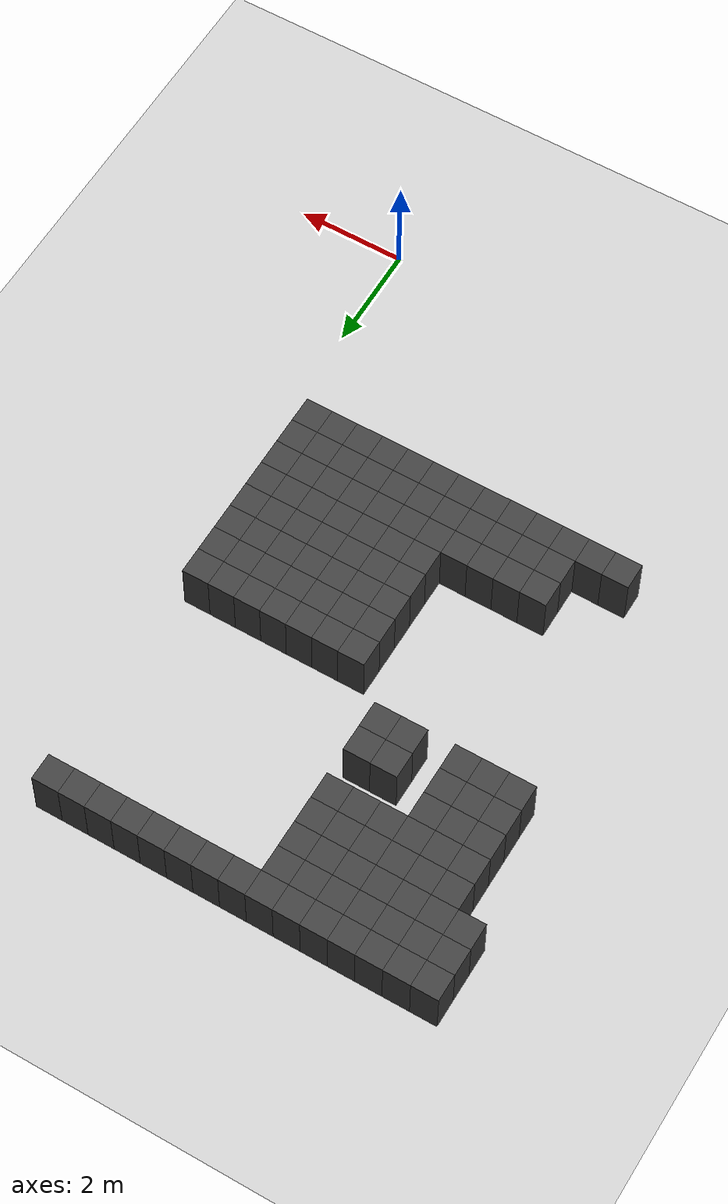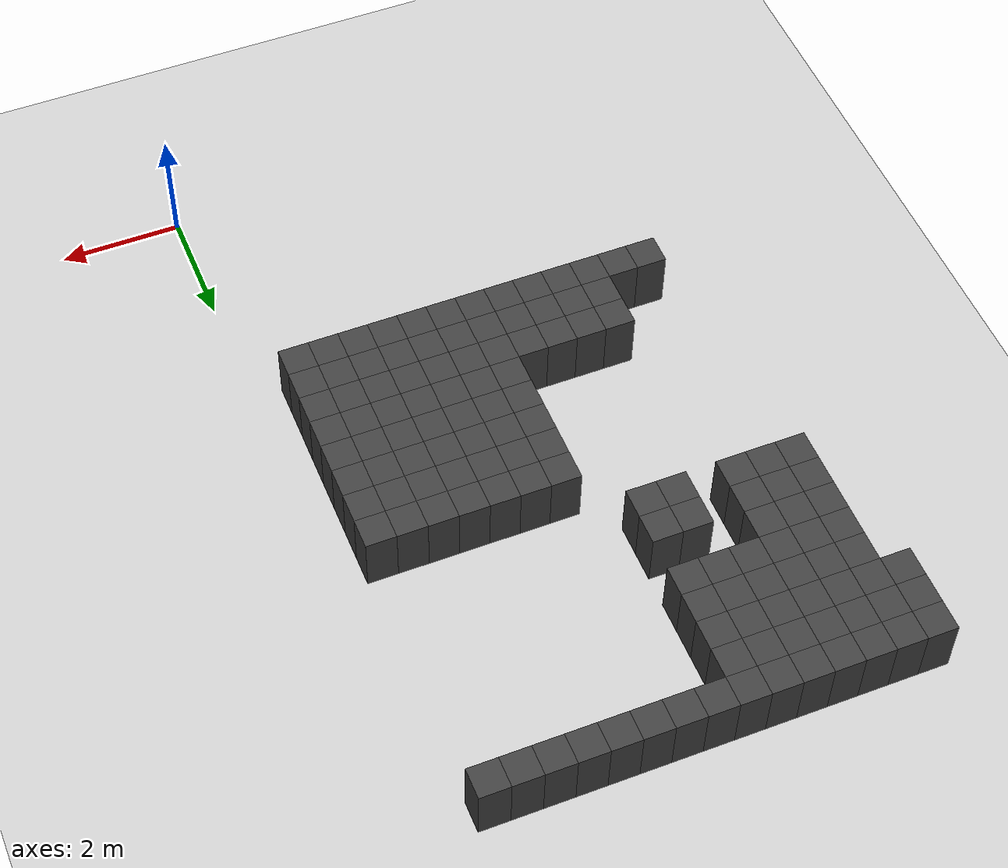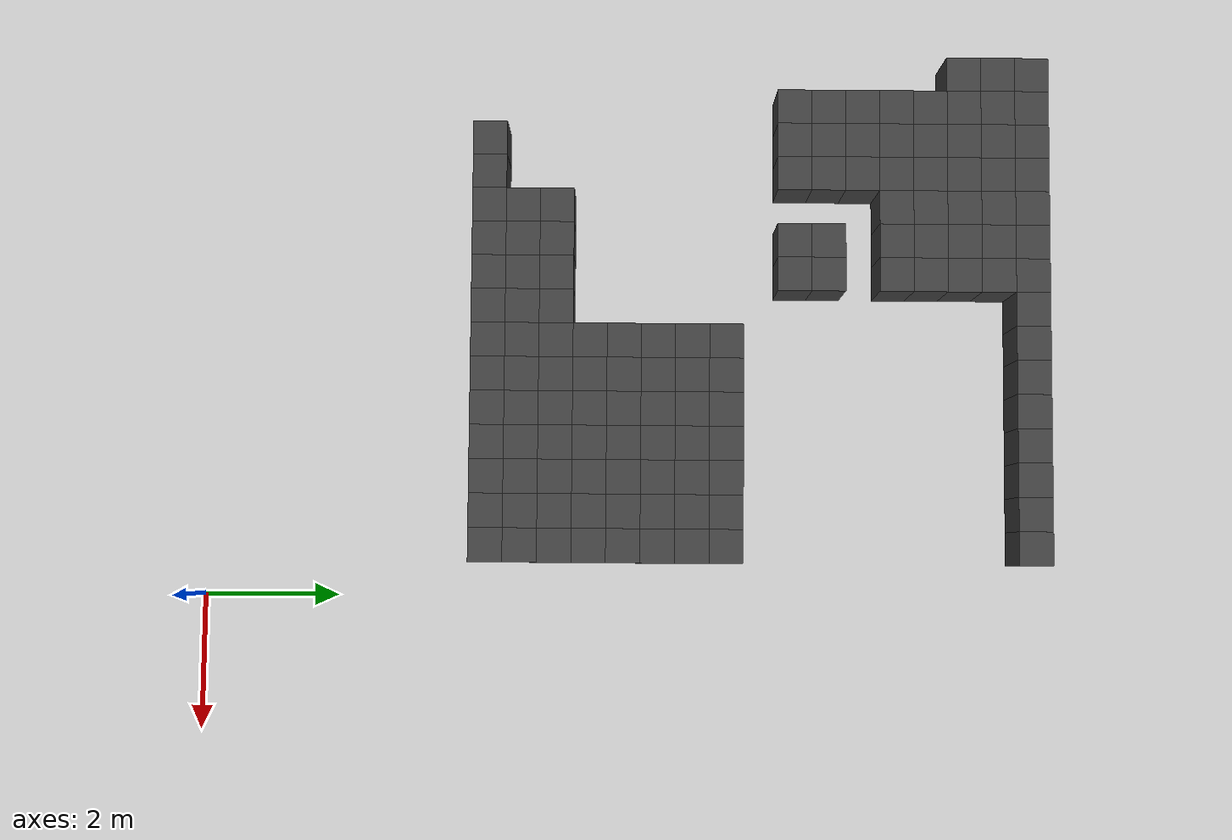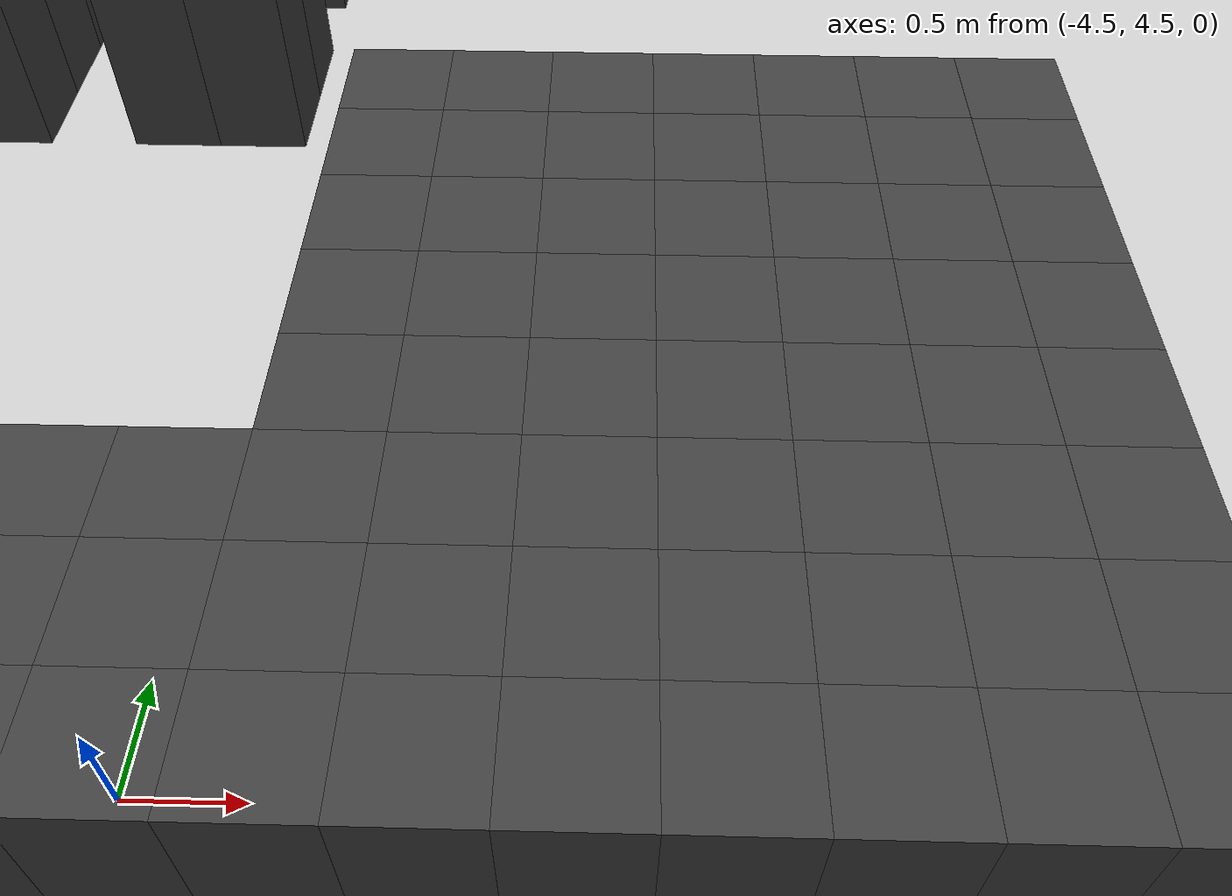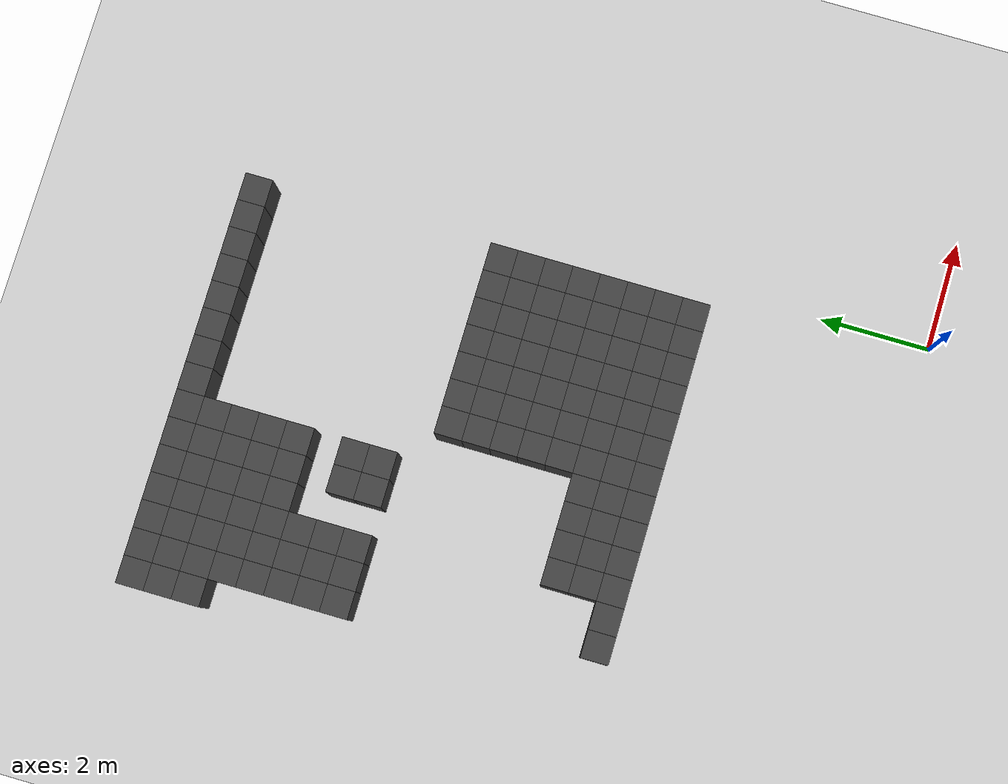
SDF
<sdf version="1.7">
 <world name="map_13994">
  <model name="ground_plane">
   <static>true</static>
   <link name="link">
    <collision name="collision">
     <geometry><plane><normal>0 0 1</normal><size>200 200</size></plane></geometry>
    </collision>
    <visual name="visual">
     <geometry><plane><normal>0 0 1</normal><size>200 200</size></plane></geometry>
     <material><ambient>0.8 0.8 0.8 1</ambient><diffuse>0.8 0.8 0.8 1</diffuse></material>
    </visual>
   </link>
  </model>
  <model name="maze_environment">
   <static>true</static>
   <link name="wall_9">
    <pose>-7.750 12.250 0.500 0 0 0</pose>
    <collision name="col"><geometry><box><size>0.5 0.5 1.0</size></box></geometry></collision>
    <visual name="vis">
     <geometry><box><size>0.5 0.5 1.0</size></box></geometry>
     <material><ambient>0.15 0.15 0.15 1</ambient><diffuse>0.25 0.25 0.25 1</diffuse></material>
    </visual>
   </link>
   <link name="wall_10">
    <pose>-7.250 12.250 0.500 0 0 0</pose>
    <collision name="col"><geometry><box><size>0.5 0.5 1.0</size></box></geometry></collision>
    <visual name="vis">
     <geometry><box><size>0.5 0.5 1.0</size></box></geometry>
     <material><ambient>0.15 0.15 0.15 1</ambient><diffuse>0.25 0.25 0.25 1</diffuse></material>
    </visual>
   </link>
   <link name="wall_11">
    <pose>-6.750 12.250 0.500 0 0 0</pose>
    <collision name="col"><geometry><box><size>0.5 0.5 1.0</size></box></geometry></collision>
    <visual name="vis">
     <geometry><box><size>0.5 0.5 1.0</size></box></geometry>
     <material><ambient>0.15 0.15 0.15 1</ambient><diffuse>0.25 0.25 0.25 1</diffuse></material>
    </visual>
   </link>
   <link name="wall_12">
    <pose>-6.250 12.250 0.500 0 0 0</pose>
    <collision name="col"><geometry><box><size>0.5 0.5 1.0</size></box></geometry></collision>
    <visual name="vis">
     <geometry><box><size>0.5 0.5 1.0</size></box></geometry>
     <material><ambient>0.15 0.15 0.15 1</ambient><diffuse>0.25 0.25 0.25 1</diffuse></material>
    </visual>
   </link>
   <link name="wall_13">
    <pose>-5.750 12.250 0.500 0 0 0</pose>
    <collision name="col"><geometry><box><size>0.5 0.5 1.0</size></box></geometry></collision>
    <visual name="vis">
     <geometry><box><size>0.5 0.5 1.0</size></box></geometry>
     <material><ambient>0.15 0.15 0.15 1</ambient><diffuse>0.25 0.25 0.25 1</diffuse></material>
    </visual>
   </link>
   <link name="wall_14">
    <pose>-5.250 12.250 0.500 0 0 0</pose>
    <collision name="col"><geometry><box><size>0.5 0.5 1.0</size></box></geometry></collision>
    <visual name="vis">
     <geometry><box><size>0.5 0.5 1.0</size></box></geometry>
     <material><ambient>0.15 0.15 0.15 1</ambient><diffuse>0.25 0.25 0.25 1</diffuse></material>
    </visual>
   </link>
   <link name="wall_15">
    <pose>-4.750 12.250 0.500 0 0 0</pose>
    <collision name="col"><geometry><box><size>0.5 0.5 1.0</size></box></geometry></collision>
    <visual name="vis">
     <geometry><box><size>0.5 0.5 1.0</size></box></geometry>
     <material><ambient>0.15 0.15 0.15 1</ambient><diffuse>0.25 0.25 0.25 1</diffuse></material>
    </visual>
   </link>
   <link name="wall_16">
    <pose>-4.250 12.250 0.500 0 0 0</pose>
    <collision name="col"><geometry><box><size>0.5 0.5 1.0</size></box></geometry></collision>
    <visual name="vis">
     <geometry><box><size>0.5 0.5 1.0</size></box></geometry>
     <material><ambient>0.15 0.15 0.15 1</ambient><diffuse>0.25 0.25 0.25 1</diffuse></material>
    </visual>
   </link>
   <link name="wall_17">
    <pose>-3.750 12.250 0.500 0 0 0</pose>
    <collision name="col"><geometry><box><size>0.5 0.5 1.0</size></box></geometry></collision>
    <visual name="vis">
     <geometry><box><size>0.5 0.5 1.0</size></box></geometry>
     <material><ambient>0.15 0.15 0.15 1</ambient><diffuse>0.25 0.25 0.25 1</diffuse></material>
    </visual>
   </link>
   <link name="wall_18">
    <pose>-3.250 12.250 0.500 0 0 0</pose>
    <collision name="col"><geometry><box><size>0.5 0.5 1.0</size></box></geometry></collision>
    <visual name="vis">
     <geometry><box><size>0.5 0.5 1.0</size></box></geometry>
     <material><ambient>0.15 0.15 0.15 1</ambient><diffuse>0.25 0.25 0.25 1</diffuse></material>
    </visual>
   </link>
   <link name="wall_19">
    <pose>-2.750 12.250 0.500 0 0 0</pose>
    <collision name="col"><geometry><box><size>0.5 0.5 1.0</size></box></geometry></collision>
    <visual name="vis">
     <geometry><box><size>0.5 0.5 1.0</size></box></geometry>
     <material><ambient>0.15 0.15 0.15 1</ambient><diffuse>0.25 0.25 0.25 1</diffuse></material>
    </visual>
   </link>
   <link name="wall_20">
    <pose>-2.250 12.250 0.500 0 0 0</pose>
    <collision name="col"><geometry><box><size>0.5 0.5 1.0</size></box></geometry></collision>
    <visual name="vis">
     <geometry><box><size>0.5 0.5 1.0</size></box></geometry>
     <material><ambient>0.15 0.15 0.15 1</ambient><diffuse>0.25 0.25 0.25 1</diffuse></material>
    </visual>
   </link>
   <link name="wall_21">
    <pose>-1.750 12.250 0.500 0 0 0</pose>
    <collision name="col"><geometry><box><size>0.5 0.5 1.0</size></box></geometry></collision>
    <visual name="vis">
     <geometry><box><size>0.5 0.5 1.0</size></box></geometry>
     <material><ambient>0.15 0.15 0.15 1</ambient><diffuse>0.25 0.25 0.25 1</diffuse></material>
    </visual>
   </link>
   <link name="wall_22">
    <pose>-1.250 12.250 0.500 0 0 0</pose>
    <collision name="col"><geometry><box><size>0.5 0.5 1.0</size></box></geometry></collision>
    <visual name="vis">
     <geometry><box><size>0.5 0.5 1.0</size></box></geometry>
     <material><ambient>0.15 0.15 0.15 1</ambient><diffuse>0.25 0.25 0.25 1</diffuse></material>
    </visual>
   </link>
   <link name="wall_23">
    <pose>-0.750 12.250 0.500 0 0 0</pose>
    <collision name="col"><geometry><box><size>0.5 0.5 1.0</size></box></geometry></collision>
    <visual name="vis">
     <geometry><box><size>0.5 0.5 1.0</size></box></geometry>
     <material><ambient>0.15 0.15 0.15 1</ambient><diffuse>0.25 0.25 0.25 1</diffuse></material>
    </visual>
   </link>
   <link name="wall_56">
    <pose>-7.750 11.750 0.500 0 0 0</pose>
    <collision name="col"><geometry><box><size>0.5 0.5 1.0</size></box></geometry></collision>
    <visual name="vis">
     <geometry><box><size>0.5 0.5 1.0</size></box></geometry>
     <material><ambient>0.15 0.15 0.15 1</ambient><diffuse>0.25 0.25 0.25 1</diffuse></material>
    </visual>
   </link>
   <link name="wall_57">
    <pose>-7.250 11.750 0.500 0 0 0</pose>
    <collision name="col"><geometry><box><size>0.5 0.5 1.0</size></box></geometry></collision>
    <visual name="vis">
     <geometry><box><size>0.5 0.5 1.0</size></box></geometry>
     <material><ambient>0.15 0.15 0.15 1</ambient><diffuse>0.25 0.25 0.25 1</diffuse></material>
    </visual>
   </link>
   <link name="wall_58">
    <pose>-6.750 11.750 0.500 0 0 0</pose>
    <collision name="col"><geometry><box><size>0.5 0.5 1.0</size></box></geometry></collision>
    <visual name="vis">
     <geometry><box><size>0.5 0.5 1.0</size></box></geometry>
     <material><ambient>0.15 0.15 0.15 1</ambient><diffuse>0.25 0.25 0.25 1</diffuse></material>
    </visual>
   </link>
   <link name="wall_59">
    <pose>-6.250 11.750 0.500 0 0 0</pose>
    <collision name="col"><geometry><box><size>0.5 0.5 1.0</size></box></geometry></collision>
    <visual name="vis">
     <geometry><box><size>0.5 0.5 1.0</size></box></geometry>
     <material><ambient>0.15 0.15 0.15 1</ambient><diffuse>0.25 0.25 0.25 1</diffuse></material>
    </visual>
   </link>
   <link name="wall_60">
    <pose>-5.750 11.750 0.500 0 0 0</pose>
    <collision name="col"><geometry><box><size>0.5 0.5 1.0</size></box></geometry></collision>
    <visual name="vis">
     <geometry><box><size>0.5 0.5 1.0</size></box></geometry>
     <material><ambient>0.15 0.15 0.15 1</ambient><diffuse>0.25 0.25 0.25 1</diffuse></material>
    </visual>
   </link>
   <link name="wall_61">
    <pose>-5.250 11.750 0.500 0 0 0</pose>
    <collision name="col"><geometry><box><size>0.5 0.5 1.0</size></box></geometry></collision>
    <visual name="vis">
     <geometry><box><size>0.5 0.5 1.0</size></box></geometry>
     <material><ambient>0.15 0.15 0.15 1</ambient><diffuse>0.25 0.25 0.25 1</diffuse></material>
    </visual>
   </link>
   <link name="wall_62">
    <pose>-4.750 11.750 0.500 0 0 0</pose>
    <collision name="col"><geometry><box><size>0.5 0.5 1.0</size></box></geometry></collision>
    <visual name="vis">
     <geometry><box><size>0.5 0.5 1.0</size></box></geometry>
     <material><ambient>0.15 0.15 0.15 1</ambient><diffuse>0.25 0.25 0.25 1</diffuse></material>
    </visual>
   </link>
   <link name="wall_95">
    <pose>-7.750 11.250 0.500 0 0 0</pose>
    <collision name="col"><geometry><box><size>0.5 0.5 1.0</size></box></geometry></collision>
    <visual name="vis">
     <geometry><box><size>0.5 0.5 1.0</size></box></geometry>
     <material><ambient>0.15 0.15 0.15 1</ambient><diffuse>0.25 0.25 0.25 1</diffuse></material>
    </visual>
   </link>
   <link name="wall_96">
    <pose>-7.250 11.250 0.500 0 0 0</pose>
    <collision name="col"><geometry><box><size>0.5 0.5 1.0</size></box></geometry></collision>
    <visual name="vis">
     <geometry><box><size>0.5 0.5 1.0</size></box></geometry>
     <material><ambient>0.15 0.15 0.15 1</ambient><diffuse>0.25 0.25 0.25 1</diffuse></material>
    </visual>
   </link>
   <link name="wall_97">
    <pose>-6.750 11.250 0.500 0 0 0</pose>
    <collision name="col"><geometry><box><size>0.5 0.5 1.0</size></box></geometry></collision>
    <visual name="vis">
     <geometry><box><size>0.5 0.5 1.0</size></box></geometry>
     <material><ambient>0.15 0.15 0.15 1</ambient><diffuse>0.25 0.25 0.25 1</diffuse></material>
    </visual>
   </link>
   <link name="wall_98">
    <pose>-6.250 11.250 0.500 0 0 0</pose>
    <collision name="col"><geometry><box><size>0.5 0.5 1.0</size></box></geometry></collision>
    <visual name="vis">
     <geometry><box><size>0.5 0.5 1.0</size></box></geometry>
     <material><ambient>0.15 0.15 0.15 1</ambient><diffuse>0.25 0.25 0.25 1</diffuse></material>
    </visual>
   </link>
   <link name="wall_99">
    <pose>-5.750 11.250 0.500 0 0 0</pose>
    <collision name="col"><geometry><box><size>0.5 0.5 1.0</size></box></geometry></collision>
    <visual name="vis">
     <geometry><box><size>0.5 0.5 1.0</size></box></geometry>
     <material><ambient>0.15 0.15 0.15 1</ambient><diffuse>0.25 0.25 0.25 1</diffuse></material>
    </visual>
   </link>
   <link name="wall_100">
    <pose>-5.250 11.250 0.500 0 0 0</pose>
    <collision name="col"><geometry><box><size>0.5 0.5 1.0</size></box></geometry></collision>
    <visual name="vis">
     <geometry><box><size>0.5 0.5 1.0</size></box></geometry>
     <material><ambient>0.15 0.15 0.15 1</ambient><diffuse>0.25 0.25 0.25 1</diffuse></material>
    </visual>
   </link>
   <link name="wall_101">
    <pose>-4.750 11.250 0.500 0 0 0</pose>
    <collision name="col"><geometry><box><size>0.5 0.5 1.0</size></box></geometry></collision>
    <visual name="vis">
     <geometry><box><size>0.5 0.5 1.0</size></box></geometry>
     <material><ambient>0.15 0.15 0.15 1</ambient><diffuse>0.25 0.25 0.25 1</diffuse></material>
    </visual>
   </link>
   <link name="wall_121">
    <pose>-7.250 10.750 0.500 0 0 0</pose>
    <collision name="col"><geometry><box><size>0.5 0.5 1.0</size></box></geometry></collision>
    <visual name="vis">
     <geometry><box><size>0.5 0.5 1.0</size></box></geometry>
     <material><ambient>0.15 0.15 0.15 1</ambient><diffuse>0.25 0.25 0.25 1</diffuse></material>
    </visual>
   </link>
   <link name="wall_122">
    <pose>-6.750 10.750 0.500 0 0 0</pose>
    <collision name="col"><geometry><box><size>0.5 0.5 1.0</size></box></geometry></collision>
    <visual name="vis">
     <geometry><box><size>0.5 0.5 1.0</size></box></geometry>
     <material><ambient>0.15 0.15 0.15 1</ambient><diffuse>0.25 0.25 0.25 1</diffuse></material>
    </visual>
   </link>
   <link name="wall_123">
    <pose>-6.250 10.750 0.500 0 0 0</pose>
    <collision name="col"><geometry><box><size>0.5 0.5 1.0</size></box></geometry></collision>
    <visual name="vis">
     <geometry><box><size>0.5 0.5 1.0</size></box></geometry>
     <material><ambient>0.15 0.15 0.15 1</ambient><diffuse>0.25 0.25 0.25 1</diffuse></material>
    </visual>
   </link>
   <link name="wall_124">
    <pose>-5.750 10.750 0.500 0 0 0</pose>
    <collision name="col"><geometry><box><size>0.5 0.5 1.0</size></box></geometry></collision>
    <visual name="vis">
     <geometry><box><size>0.5 0.5 1.0</size></box></geometry>
     <material><ambient>0.15 0.15 0.15 1</ambient><diffuse>0.25 0.25 0.25 1</diffuse></material>
    </visual>
   </link>
   <link name="wall_125">
    <pose>-5.250 10.750 0.500 0 0 0</pose>
    <collision name="col"><geometry><box><size>0.5 0.5 1.0</size></box></geometry></collision>
    <visual name="vis">
     <geometry><box><size>0.5 0.5 1.0</size></box></geometry>
     <material><ambient>0.15 0.15 0.15 1</ambient><diffuse>0.25 0.25 0.25 1</diffuse></material>
    </visual>
   </link>
   <link name="wall_126">
    <pose>-4.750 10.750 0.500 0 0 0</pose>
    <collision name="col"><geometry><box><size>0.5 0.5 1.0</size></box></geometry></collision>
    <visual name="vis">
     <geometry><box><size>0.5 0.5 1.0</size></box></geometry>
     <material><ambient>0.15 0.15 0.15 1</ambient><diffuse>0.25 0.25 0.25 1</diffuse></material>
    </visual>
   </link>
   <link name="wall_148">
    <pose>-7.250 10.250 0.500 0 0 0</pose>
    <collision name="col"><geometry><box><size>0.5 0.5 1.0</size></box></geometry></collision>
    <visual name="vis">
     <geometry><box><size>0.5 0.5 1.0</size></box></geometry>
     <material><ambient>0.15 0.15 0.15 1</ambient><diffuse>0.25 0.25 0.25 1</diffuse></material>
    </visual>
   </link>
   <link name="wall_149">
    <pose>-6.750 10.250 0.500 0 0 0</pose>
    <collision name="col"><geometry><box><size>0.5 0.5 1.0</size></box></geometry></collision>
    <visual name="vis">
     <geometry><box><size>0.5 0.5 1.0</size></box></geometry>
     <material><ambient>0.15 0.15 0.15 1</ambient><diffuse>0.25 0.25 0.25 1</diffuse></material>
    </visual>
   </link>
   <link name="wall_150">
    <pose>-6.250 10.250 0.500 0 0 0</pose>
    <collision name="col"><geometry><box><size>0.5 0.5 1.0</size></box></geometry></collision>
    <visual name="vis">
     <geometry><box><size>0.5 0.5 1.0</size></box></geometry>
     <material><ambient>0.15 0.15 0.15 1</ambient><diffuse>0.25 0.25 0.25 1</diffuse></material>
    </visual>
   </link>
   <link name="wall_151">
    <pose>-5.750 10.250 0.500 0 0 0</pose>
    <collision name="col"><geometry><box><size>0.5 0.5 1.0</size></box></geometry></collision>
    <visual name="vis">
     <geometry><box><size>0.5 0.5 1.0</size></box></geometry>
     <material><ambient>0.15 0.15 0.15 1</ambient><diffuse>0.25 0.25 0.25 1</diffuse></material>
    </visual>
   </link>
   <link name="wall_152">
    <pose>-5.250 10.250 0.500 0 0 0</pose>
    <collision name="col"><geometry><box><size>0.5 0.5 1.0</size></box></geometry></collision>
    <visual name="vis">
     <geometry><box><size>0.5 0.5 1.0</size></box></geometry>
     <material><ambient>0.15 0.15 0.15 1</ambient><diffuse>0.25 0.25 0.25 1</diffuse></material>
    </visual>
   </link>
   <link name="wall_153">
    <pose>-4.750 10.250 0.500 0 0 0</pose>
    <collision name="col"><geometry><box><size>0.5 0.5 1.0</size></box></geometry></collision>
    <visual name="vis">
     <geometry><box><size>0.5 0.5 1.0</size></box></geometry>
     <material><ambient>0.15 0.15 0.15 1</ambient><diffuse>0.25 0.25 0.25 1</diffuse></material>
    </visual>
   </link>
   <link name="wall_171">
    <pose>-7.250 9.750 0.500 0 0 0</pose>
    <collision name="col"><geometry><box><size>0.5 0.5 1.0</size></box></geometry></collision>
    <visual name="vis">
     <geometry><box><size>0.5 0.5 1.0</size></box></geometry>
     <material><ambient>0.15 0.15 0.15 1</ambient><diffuse>0.25 0.25 0.25 1</diffuse></material>
    </visual>
   </link>
   <link name="wall_172">
    <pose>-6.750 9.750 0.500 0 0 0</pose>
    <collision name="col"><geometry><box><size>0.5 0.5 1.0</size></box></geometry></collision>
    <visual name="vis">
     <geometry><box><size>0.5 0.5 1.0</size></box></geometry>
     <material><ambient>0.15 0.15 0.15 1</ambient><diffuse>0.25 0.25 0.25 1</diffuse></material>
    </visual>
   </link>
   <link name="wall_173">
    <pose>-6.250 9.750 0.500 0 0 0</pose>
    <collision name="col"><geometry><box><size>0.5 0.5 1.0</size></box></geometry></collision>
    <visual name="vis">
     <geometry><box><size>0.5 0.5 1.0</size></box></geometry>
     <material><ambient>0.15 0.15 0.15 1</ambient><diffuse>0.25 0.25 0.25 1</diffuse></material>
    </visual>
   </link>
   <link name="wall_189">
    <pose>-7.250 9.250 0.500 0 0 0</pose>
    <collision name="col"><geometry><box><size>0.5 0.5 1.0</size></box></geometry></collision>
    <visual name="vis">
     <geometry><box><size>0.5 0.5 1.0</size></box></geometry>
     <material><ambient>0.15 0.15 0.15 1</ambient><diffuse>0.25 0.25 0.25 1</diffuse></material>
    </visual>
   </link>
   <link name="wall_190">
    <pose>-6.750 9.250 0.500 0 0 0</pose>
    <collision name="col"><geometry><box><size>0.5 0.5 1.0</size></box></geometry></collision>
    <visual name="vis">
     <geometry><box><size>0.5 0.5 1.0</size></box></geometry>
     <material><ambient>0.15 0.15 0.15 1</ambient><diffuse>0.25 0.25 0.25 1</diffuse></material>
    </visual>
   </link>
   <link name="wall_191">
    <pose>-6.250 9.250 0.500 0 0 0</pose>
    <collision name="col"><geometry><box><size>0.5 0.5 1.0</size></box></geometry></collision>
    <visual name="vis">
     <geometry><box><size>0.5 0.5 1.0</size></box></geometry>
     <material><ambient>0.15 0.15 0.15 1</ambient><diffuse>0.25 0.25 0.25 1</diffuse></material>
    </visual>
   </link>
   <link name="wall_192">
    <pose>-5.250 9.250 0.500 0 0 0</pose>
    <collision name="col"><geometry><box><size>0.5 0.5 1.0</size></box></geometry></collision>
    <visual name="vis">
     <geometry><box><size>0.5 0.5 1.0</size></box></geometry>
     <material><ambient>0.15 0.15 0.15 1</ambient><diffuse>0.25 0.25 0.25 1</diffuse></material>
    </visual>
   </link>
   <link name="wall_193">
    <pose>-4.750 9.250 0.500 0 0 0</pose>
    <collision name="col"><geometry><box><size>0.5 0.5 1.0</size></box></geometry></collision>
    <visual name="vis">
     <geometry><box><size>0.5 0.5 1.0</size></box></geometry>
     <material><ambient>0.15 0.15 0.15 1</ambient><diffuse>0.25 0.25 0.25 1</diffuse></material>
    </visual>
   </link>
   <link name="wall_211">
    <pose>-7.250 8.750 0.500 0 0 0</pose>
    <collision name="col"><geometry><box><size>0.5 0.5 1.0</size></box></geometry></collision>
    <visual name="vis">
     <geometry><box><size>0.5 0.5 1.0</size></box></geometry>
     <material><ambient>0.15 0.15 0.15 1</ambient><diffuse>0.25 0.25 0.25 1</diffuse></material>
    </visual>
   </link>
   <link name="wall_212">
    <pose>-6.750 8.750 0.500 0 0 0</pose>
    <collision name="col"><geometry><box><size>0.5 0.5 1.0</size></box></geometry></collision>
    <visual name="vis">
     <geometry><box><size>0.5 0.5 1.0</size></box></geometry>
     <material><ambient>0.15 0.15 0.15 1</ambient><diffuse>0.25 0.25 0.25 1</diffuse></material>
    </visual>
   </link>
   <link name="wall_213">
    <pose>-6.250 8.750 0.500 0 0 0</pose>
    <collision name="col"><geometry><box><size>0.5 0.5 1.0</size></box></geometry></collision>
    <visual name="vis">
     <geometry><box><size>0.5 0.5 1.0</size></box></geometry>
     <material><ambient>0.15 0.15 0.15 1</ambient><diffuse>0.25 0.25 0.25 1</diffuse></material>
    </visual>
   </link>
   <link name="wall_214">
    <pose>-5.250 8.750 0.500 0 0 0</pose>
    <collision name="col"><geometry><box><size>0.5 0.5 1.0</size></box></geometry></collision>
    <visual name="vis">
     <geometry><box><size>0.5 0.5 1.0</size></box></geometry>
     <material><ambient>0.15 0.15 0.15 1</ambient><diffuse>0.25 0.25 0.25 1</diffuse></material>
    </visual>
   </link>
   <link name="wall_215">
    <pose>-4.750 8.750 0.500 0 0 0</pose>
    <collision name="col"><geometry><box><size>0.5 0.5 1.0</size></box></geometry></collision>
    <visual name="vis">
     <geometry><box><size>0.5 0.5 1.0</size></box></geometry>
     <material><ambient>0.15 0.15 0.15 1</ambient><diffuse>0.25 0.25 0.25 1</diffuse></material>
    </visual>
   </link>
   <link name="wall_250">
    <pose>-3.750 7.750 0.500 0 0 0</pose>
    <collision name="col"><geometry><box><size>0.5 0.5 1.0</size></box></geometry></collision>
    <visual name="vis">
     <geometry><box><size>0.5 0.5 1.0</size></box></geometry>
     <material><ambient>0.15 0.15 0.15 1</ambient><diffuse>0.25 0.25 0.25 1</diffuse></material>
    </visual>
   </link>
   <link name="wall_251">
    <pose>-3.250 7.750 0.500 0 0 0</pose>
    <collision name="col"><geometry><box><size>0.5 0.5 1.0</size></box></geometry></collision>
    <visual name="vis">
     <geometry><box><size>0.5 0.5 1.0</size></box></geometry>
     <material><ambient>0.15 0.15 0.15 1</ambient><diffuse>0.25 0.25 0.25 1</diffuse></material>
    </visual>
   </link>
   <link name="wall_252">
    <pose>-2.750 7.750 0.500 0 0 0</pose>
    <collision name="col"><geometry><box><size>0.5 0.5 1.0</size></box></geometry></collision>
    <visual name="vis">
     <geometry><box><size>0.5 0.5 1.0</size></box></geometry>
     <material><ambient>0.15 0.15 0.15 1</ambient><diffuse>0.25 0.25 0.25 1</diffuse></material>
    </visual>
   </link>
   <link name="wall_253">
    <pose>-2.250 7.750 0.500 0 0 0</pose>
    <collision name="col"><geometry><box><size>0.5 0.5 1.0</size></box></geometry></collision>
    <visual name="vis">
     <geometry><box><size>0.5 0.5 1.0</size></box></geometry>
     <material><ambient>0.15 0.15 0.15 1</ambient><diffuse>0.25 0.25 0.25 1</diffuse></material>
    </visual>
   </link>
   <link name="wall_254">
    <pose>-1.750 7.750 0.500 0 0 0</pose>
    <collision name="col"><geometry><box><size>0.5 0.5 1.0</size></box></geometry></collision>
    <visual name="vis">
     <geometry><box><size>0.5 0.5 1.0</size></box></geometry>
     <material><ambient>0.15 0.15 0.15 1</ambient><diffuse>0.25 0.25 0.25 1</diffuse></material>
    </visual>
   </link>
   <link name="wall_255">
    <pose>-1.250 7.750 0.500 0 0 0</pose>
    <collision name="col"><geometry><box><size>0.5 0.5 1.0</size></box></geometry></collision>
    <visual name="vis">
     <geometry><box><size>0.5 0.5 1.0</size></box></geometry>
     <material><ambient>0.15 0.15 0.15 1</ambient><diffuse>0.25 0.25 0.25 1</diffuse></material>
    </visual>
   </link>
   <link name="wall_256">
    <pose>-0.750 7.750 0.500 0 0 0</pose>
    <collision name="col"><geometry><box><size>0.5 0.5 1.0</size></box></geometry></collision>
    <visual name="vis">
     <geometry><box><size>0.5 0.5 1.0</size></box></geometry>
     <material><ambient>0.15 0.15 0.15 1</ambient><diffuse>0.25 0.25 0.25 1</diffuse></material>
    </visual>
   </link>
   <link name="wall_280">
    <pose>-3.750 7.250 0.500 0 0 0</pose>
    <collision name="col"><geometry><box><size>0.5 0.5 1.0</size></box></geometry></collision>
    <visual name="vis">
     <geometry><box><size>0.5 0.5 1.0</size></box></geometry>
     <material><ambient>0.15 0.15 0.15 1</ambient><diffuse>0.25 0.25 0.25 1</diffuse></material>
    </visual>
   </link>
   <link name="wall_281">
    <pose>-3.250 7.250 0.500 0 0 0</pose>
    <collision name="col"><geometry><box><size>0.5 0.5 1.0</size></box></geometry></collision>
    <visual name="vis">
     <geometry><box><size>0.5 0.5 1.0</size></box></geometry>
     <material><ambient>0.15 0.15 0.15 1</ambient><diffuse>0.25 0.25 0.25 1</diffuse></material>
    </visual>
   </link>
   <link name="wall_282">
    <pose>-2.750 7.250 0.500 0 0 0</pose>
    <collision name="col"><geometry><box><size>0.5 0.5 1.0</size></box></geometry></collision>
    <visual name="vis">
     <geometry><box><size>0.5 0.5 1.0</size></box></geometry>
     <material><ambient>0.15 0.15 0.15 1</ambient><diffuse>0.25 0.25 0.25 1</diffuse></material>
    </visual>
   </link>
   <link name="wall_283">
    <pose>-2.250 7.250 0.500 0 0 0</pose>
    <collision name="col"><geometry><box><size>0.5 0.5 1.0</size></box></geometry></collision>
    <visual name="vis">
     <geometry><box><size>0.5 0.5 1.0</size></box></geometry>
     <material><ambient>0.15 0.15 0.15 1</ambient><diffuse>0.25 0.25 0.25 1</diffuse></material>
    </visual>
   </link>
   <link name="wall_284">
    <pose>-1.750 7.250 0.500 0 0 0</pose>
    <collision name="col"><geometry><box><size>0.5 0.5 1.0</size></box></geometry></collision>
    <visual name="vis">
     <geometry><box><size>0.5 0.5 1.0</size></box></geometry>
     <material><ambient>0.15 0.15 0.15 1</ambient><diffuse>0.25 0.25 0.25 1</diffuse></material>
    </visual>
   </link>
   <link name="wall_285">
    <pose>-1.250 7.250 0.500 0 0 0</pose>
    <collision name="col"><geometry><box><size>0.5 0.5 1.0</size></box></geometry></collision>
    <visual name="vis">
     <geometry><box><size>0.5 0.5 1.0</size></box></geometry>
     <material><ambient>0.15 0.15 0.15 1</ambient><diffuse>0.25 0.25 0.25 1</diffuse></material>
    </visual>
   </link>
   <link name="wall_286">
    <pose>-0.750 7.250 0.500 0 0 0</pose>
    <collision name="col"><geometry><box><size>0.5 0.5 1.0</size></box></geometry></collision>
    <visual name="vis">
     <geometry><box><size>0.5 0.5 1.0</size></box></geometry>
     <material><ambient>0.15 0.15 0.15 1</ambient><diffuse>0.25 0.25 0.25 1</diffuse></material>
    </visual>
   </link>
   <link name="wall_310">
    <pose>-3.750 6.750 0.500 0 0 0</pose>
    <collision name="col"><geometry><box><size>0.5 0.5 1.0</size></box></geometry></collision>
    <visual name="vis">
     <geometry><box><size>0.5 0.5 1.0</size></box></geometry>
     <material><ambient>0.15 0.15 0.15 1</ambient><diffuse>0.25 0.25 0.25 1</diffuse></material>
    </visual>
   </link>
   <link name="wall_311">
    <pose>-3.250 6.750 0.500 0 0 0</pose>
    <collision name="col"><geometry><box><size>0.5 0.5 1.0</size></box></geometry></collision>
    <visual name="vis">
     <geometry><box><size>0.5 0.5 1.0</size></box></geometry>
     <material><ambient>0.15 0.15 0.15 1</ambient><diffuse>0.25 0.25 0.25 1</diffuse></material>
    </visual>
   </link>
   <link name="wall_312">
    <pose>-2.750 6.750 0.500 0 0 0</pose>
    <collision name="col"><geometry><box><size>0.5 0.5 1.0</size></box></geometry></collision>
    <visual name="vis">
     <geometry><box><size>0.5 0.5 1.0</size></box></geometry>
     <material><ambient>0.15 0.15 0.15 1</ambient><diffuse>0.25 0.25 0.25 1</diffuse></material>
    </visual>
   </link>
   <link name="wall_313">
    <pose>-2.250 6.750 0.500 0 0 0</pose>
    <collision name="col"><geometry><box><size>0.5 0.5 1.0</size></box></geometry></collision>
    <visual name="vis">
     <geometry><box><size>0.5 0.5 1.0</size></box></geometry>
     <material><ambient>0.15 0.15 0.15 1</ambient><diffuse>0.25 0.25 0.25 1</diffuse></material>
    </visual>
   </link>
   <link name="wall_314">
    <pose>-1.750 6.750 0.500 0 0 0</pose>
    <collision name="col"><geometry><box><size>0.5 0.5 1.0</size></box></geometry></collision>
    <visual name="vis">
     <geometry><box><size>0.5 0.5 1.0</size></box></geometry>
     <material><ambient>0.15 0.15 0.15 1</ambient><diffuse>0.25 0.25 0.25 1</diffuse></material>
    </visual>
   </link>
   <link name="wall_315">
    <pose>-1.250 6.750 0.500 0 0 0</pose>
    <collision name="col"><geometry><box><size>0.5 0.5 1.0</size></box></geometry></collision>
    <visual name="vis">
     <geometry><box><size>0.5 0.5 1.0</size></box></geometry>
     <material><ambient>0.15 0.15 0.15 1</ambient><diffuse>0.25 0.25 0.25 1</diffuse></material>
    </visual>
   </link>
   <link name="wall_316">
    <pose>-0.750 6.750 0.500 0 0 0</pose>
    <collision name="col"><geometry><box><size>0.5 0.5 1.0</size></box></geometry></collision>
    <visual name="vis">
     <geometry><box><size>0.5 0.5 1.0</size></box></geometry>
     <material><ambient>0.15 0.15 0.15 1</ambient><diffuse>0.25 0.25 0.25 1</diffuse></material>
    </visual>
   </link>
   <link name="wall_343">
    <pose>-3.750 6.250 0.500 0 0 0</pose>
    <collision name="col"><geometry><box><size>0.5 0.5 1.0</size></box></geometry></collision>
    <visual name="vis">
     <geometry><box><size>0.5 0.5 1.0</size></box></geometry>
     <material><ambient>0.15 0.15 0.15 1</ambient><diffuse>0.25 0.25 0.25 1</diffuse></material>
    </visual>
   </link>
   <link name="wall_344">
    <pose>-3.250 6.250 0.500 0 0 0</pose>
    <collision name="col"><geometry><box><size>0.5 0.5 1.0</size></box></geometry></collision>
    <visual name="vis">
     <geometry><box><size>0.5 0.5 1.0</size></box></geometry>
     <material><ambient>0.15 0.15 0.15 1</ambient><diffuse>0.25 0.25 0.25 1</diffuse></material>
    </visual>
   </link>
   <link name="wall_345">
    <pose>-2.750 6.250 0.500 0 0 0</pose>
    <collision name="col"><geometry><box><size>0.5 0.5 1.0</size></box></geometry></collision>
    <visual name="vis">
     <geometry><box><size>0.5 0.5 1.0</size></box></geometry>
     <material><ambient>0.15 0.15 0.15 1</ambient><diffuse>0.25 0.25 0.25 1</diffuse></material>
    </visual>
   </link>
   <link name="wall_346">
    <pose>-2.250 6.250 0.500 0 0 0</pose>
    <collision name="col"><geometry><box><size>0.5 0.5 1.0</size></box></geometry></collision>
    <visual name="vis">
     <geometry><box><size>0.5 0.5 1.0</size></box></geometry>
     <material><ambient>0.15 0.15 0.15 1</ambient><diffuse>0.25 0.25 0.25 1</diffuse></material>
    </visual>
   </link>
   <link name="wall_347">
    <pose>-1.750 6.250 0.500 0 0 0</pose>
    <collision name="col"><geometry><box><size>0.5 0.5 1.0</size></box></geometry></collision>
    <visual name="vis">
     <geometry><box><size>0.5 0.5 1.0</size></box></geometry>
     <material><ambient>0.15 0.15 0.15 1</ambient><diffuse>0.25 0.25 0.25 1</diffuse></material>
    </visual>
   </link>
   <link name="wall_348">
    <pose>-1.250 6.250 0.500 0 0 0</pose>
    <collision name="col"><geometry><box><size>0.5 0.5 1.0</size></box></geometry></collision>
    <visual name="vis">
     <geometry><box><size>0.5 0.5 1.0</size></box></geometry>
     <material><ambient>0.15 0.15 0.15 1</ambient><diffuse>0.25 0.25 0.25 1</diffuse></material>
    </visual>
   </link>
   <link name="wall_349">
    <pose>-0.750 6.250 0.500 0 0 0</pose>
    <collision name="col"><geometry><box><size>0.5 0.5 1.0</size></box></geometry></collision>
    <visual name="vis">
     <geometry><box><size>0.5 0.5 1.0</size></box></geometry>
     <material><ambient>0.15 0.15 0.15 1</ambient><diffuse>0.25 0.25 0.25 1</diffuse></material>
    </visual>
   </link>
   <link name="wall_381">
    <pose>-3.750 5.750 0.500 0 0 0</pose>
    <collision name="col"><geometry><box><size>0.5 0.5 1.0</size></box></geometry></collision>
    <visual name="vis">
     <geometry><box><size>0.5 0.5 1.0</size></box></geometry>
     <material><ambient>0.15 0.15 0.15 1</ambient><diffuse>0.25 0.25 0.25 1</diffuse></material>
    </visual>
   </link>
   <link name="wall_382">
    <pose>-3.250 5.750 0.500 0 0 0</pose>
    <collision name="col"><geometry><box><size>0.5 0.5 1.0</size></box></geometry></collision>
    <visual name="vis">
     <geometry><box><size>0.5 0.5 1.0</size></box></geometry>
     <material><ambient>0.15 0.15 0.15 1</ambient><diffuse>0.25 0.25 0.25 1</diffuse></material>
    </visual>
   </link>
   <link name="wall_383">
    <pose>-2.750 5.750 0.500 0 0 0</pose>
    <collision name="col"><geometry><box><size>0.5 0.5 1.0</size></box></geometry></collision>
    <visual name="vis">
     <geometry><box><size>0.5 0.5 1.0</size></box></geometry>
     <material><ambient>0.15 0.15 0.15 1</ambient><diffuse>0.25 0.25 0.25 1</diffuse></material>
    </visual>
   </link>
   <link name="wall_384">
    <pose>-2.250 5.750 0.500 0 0 0</pose>
    <collision name="col"><geometry><box><size>0.5 0.5 1.0</size></box></geometry></collision>
    <visual name="vis">
     <geometry><box><size>0.5 0.5 1.0</size></box></geometry>
     <material><ambient>0.15 0.15 0.15 1</ambient><diffuse>0.25 0.25 0.25 1</diffuse></material>
    </visual>
   </link>
   <link name="wall_385">
    <pose>-1.750 5.750 0.500 0 0 0</pose>
    <collision name="col"><geometry><box><size>0.5 0.5 1.0</size></box></geometry></collision>
    <visual name="vis">
     <geometry><box><size>0.5 0.5 1.0</size></box></geometry>
     <material><ambient>0.15 0.15 0.15 1</ambient><diffuse>0.25 0.25 0.25 1</diffuse></material>
    </visual>
   </link>
   <link name="wall_386">
    <pose>-1.250 5.750 0.500 0 0 0</pose>
    <collision name="col"><geometry><box><size>0.5 0.5 1.0</size></box></geometry></collision>
    <visual name="vis">
     <geometry><box><size>0.5 0.5 1.0</size></box></geometry>
     <material><ambient>0.15 0.15 0.15 1</ambient><diffuse>0.25 0.25 0.25 1</diffuse></material>
    </visual>
   </link>
   <link name="wall_387">
    <pose>-0.750 5.750 0.500 0 0 0</pose>
    <collision name="col"><geometry><box><size>0.5 0.5 1.0</size></box></geometry></collision>
    <visual name="vis">
     <geometry><box><size>0.5 0.5 1.0</size></box></geometry>
     <material><ambient>0.15 0.15 0.15 1</ambient><diffuse>0.25 0.25 0.25 1</diffuse></material>
    </visual>
   </link>
   <link name="wall_415">
    <pose>-5.750 5.250 0.500 0 0 0</pose>
    <collision name="col"><geometry><box><size>0.5 0.5 1.0</size></box></geometry></collision>
    <visual name="vis">
     <geometry><box><size>0.5 0.5 1.0</size></box></geometry>
     <material><ambient>0.15 0.15 0.15 1</ambient><diffuse>0.25 0.25 0.25 1</diffuse></material>
    </visual>
   </link>
   <link name="wall_416">
    <pose>-5.250 5.250 0.500 0 0 0</pose>
    <collision name="col"><geometry><box><size>0.5 0.5 1.0</size></box></geometry></collision>
    <visual name="vis">
     <geometry><box><size>0.5 0.5 1.0</size></box></geometry>
     <material><ambient>0.15 0.15 0.15 1</ambient><diffuse>0.25 0.25 0.25 1</diffuse></material>
    </visual>
   </link>
   <link name="wall_417">
    <pose>-4.750 5.250 0.500 0 0 0</pose>
    <collision name="col"><geometry><box><size>0.5 0.5 1.0</size></box></geometry></collision>
    <visual name="vis">
     <geometry><box><size>0.5 0.5 1.0</size></box></geometry>
     <material><ambient>0.15 0.15 0.15 1</ambient><diffuse>0.25 0.25 0.25 1</diffuse></material>
    </visual>
   </link>
   <link name="wall_418">
    <pose>-4.250 5.250 0.500 0 0 0</pose>
    <collision name="col"><geometry><box><size>0.5 0.5 1.0</size></box></geometry></collision>
    <visual name="vis">
     <geometry><box><size>0.5 0.5 1.0</size></box></geometry>
     <material><ambient>0.15 0.15 0.15 1</ambient><diffuse>0.25 0.25 0.25 1</diffuse></material>
    </visual>
   </link>
   <link name="wall_419">
    <pose>-3.750 5.250 0.500 0 0 0</pose>
    <collision name="col"><geometry><box><size>0.5 0.5 1.0</size></box></geometry></collision>
    <visual name="vis">
     <geometry><box><size>0.5 0.5 1.0</size></box></geometry>
     <material><ambient>0.15 0.15 0.15 1</ambient><diffuse>0.25 0.25 0.25 1</diffuse></material>
    </visual>
   </link>
   <link name="wall_420">
    <pose>-3.250 5.250 0.500 0 0 0</pose>
    <collision name="col"><geometry><box><size>0.5 0.5 1.0</size></box></geometry></collision>
    <visual name="vis">
     <geometry><box><size>0.5 0.5 1.0</size></box></geometry>
     <material><ambient>0.15 0.15 0.15 1</ambient><diffuse>0.25 0.25 0.25 1</diffuse></material>
    </visual>
   </link>
   <link name="wall_421">
    <pose>-2.750 5.250 0.500 0 0 0</pose>
    <collision name="col"><geometry><box><size>0.5 0.5 1.0</size></box></geometry></collision>
    <visual name="vis">
     <geometry><box><size>0.5 0.5 1.0</size></box></geometry>
     <material><ambient>0.15 0.15 0.15 1</ambient><diffuse>0.25 0.25 0.25 1</diffuse></material>
    </visual>
   </link>
   <link name="wall_422">
    <pose>-2.250 5.250 0.500 0 0 0</pose>
    <collision name="col"><geometry><box><size>0.5 0.5 1.0</size></box></geometry></collision>
    <visual name="vis">
     <geometry><box><size>0.5 0.5 1.0</size></box></geometry>
     <material><ambient>0.15 0.15 0.15 1</ambient><diffuse>0.25 0.25 0.25 1</diffuse></material>
    </visual>
   </link>
   <link name="wall_423">
    <pose>-1.750 5.250 0.500 0 0 0</pose>
    <collision name="col"><geometry><box><size>0.5 0.5 1.0</size></box></geometry></collision>
    <visual name="vis">
     <geometry><box><size>0.5 0.5 1.0</size></box></geometry>
     <material><ambient>0.15 0.15 0.15 1</ambient><diffuse>0.25 0.25 0.25 1</diffuse></material>
    </visual>
   </link>
   <link name="wall_424">
    <pose>-1.250 5.250 0.500 0 0 0</pose>
    <collision name="col"><geometry><box><size>0.5 0.5 1.0</size></box></geometry></collision>
    <visual name="vis">
     <geometry><box><size>0.5 0.5 1.0</size></box></geometry>
     <material><ambient>0.15 0.15 0.15 1</ambient><diffuse>0.25 0.25 0.25 1</diffuse></material>
    </visual>
   </link>
   <link name="wall_425">
    <pose>-0.750 5.250 0.500 0 0 0</pose>
    <collision name="col"><geometry><box><size>0.5 0.5 1.0</size></box></geometry></collision>
    <visual name="vis">
     <geometry><box><size>0.5 0.5 1.0</size></box></geometry>
     <material><ambient>0.15 0.15 0.15 1</ambient><diffuse>0.25 0.25 0.25 1</diffuse></material>
    </visual>
   </link>
   <link name="wall_453">
    <pose>-5.750 4.750 0.500 0 0 0</pose>
    <collision name="col"><geometry><box><size>0.5 0.5 1.0</size></box></geometry></collision>
    <visual name="vis">
     <geometry><box><size>0.5 0.5 1.0</size></box></geometry>
     <material><ambient>0.15 0.15 0.15 1</ambient><diffuse>0.25 0.25 0.25 1</diffuse></material>
    </visual>
   </link>
   <link name="wall_454">
    <pose>-5.250 4.750 0.500 0 0 0</pose>
    <collision name="col"><geometry><box><size>0.5 0.5 1.0</size></box></geometry></collision>
    <visual name="vis">
     <geometry><box><size>0.5 0.5 1.0</size></box></geometry>
     <material><ambient>0.15 0.15 0.15 1</ambient><diffuse>0.25 0.25 0.25 1</diffuse></material>
    </visual>
   </link>
   <link name="wall_455">
    <pose>-4.750 4.750 0.500 0 0 0</pose>
    <collision name="col"><geometry><box><size>0.5 0.5 1.0</size></box></geometry></collision>
    <visual name="vis">
     <geometry><box><size>0.5 0.5 1.0</size></box></geometry>
     <material><ambient>0.15 0.15 0.15 1</ambient><diffuse>0.25 0.25 0.25 1</diffuse></material>
    </visual>
   </link>
   <link name="wall_456">
    <pose>-4.250 4.750 0.500 0 0 0</pose>
    <collision name="col"><geometry><box><size>0.5 0.5 1.0</size></box></geometry></collision>
    <visual name="vis">
     <geometry><box><size>0.5 0.5 1.0</size></box></geometry>
     <material><ambient>0.15 0.15 0.15 1</ambient><diffuse>0.25 0.25 0.25 1</diffuse></material>
    </visual>
   </link>
   <link name="wall_457">
    <pose>-3.750 4.750 0.500 0 0 0</pose>
    <collision name="col"><geometry><box><size>0.5 0.5 1.0</size></box></geometry></collision>
    <visual name="vis">
     <geometry><box><size>0.5 0.5 1.0</size></box></geometry>
     <material><ambient>0.15 0.15 0.15 1</ambient><diffuse>0.25 0.25 0.25 1</diffuse></material>
    </visual>
   </link>
   <link name="wall_458">
    <pose>-3.250 4.750 0.500 0 0 0</pose>
    <collision name="col"><geometry><box><size>0.5 0.5 1.0</size></box></geometry></collision>
    <visual name="vis">
     <geometry><box><size>0.5 0.5 1.0</size></box></geometry>
     <material><ambient>0.15 0.15 0.15 1</ambient><diffuse>0.25 0.25 0.25 1</diffuse></material>
    </visual>
   </link>
   <link name="wall_459">
    <pose>-2.750 4.750 0.500 0 0 0</pose>
    <collision name="col"><geometry><box><size>0.5 0.5 1.0</size></box></geometry></collision>
    <visual name="vis">
     <geometry><box><size>0.5 0.5 1.0</size></box></geometry>
     <material><ambient>0.15 0.15 0.15 1</ambient><diffuse>0.25 0.25 0.25 1</diffuse></material>
    </visual>
   </link>
   <link name="wall_460">
    <pose>-2.250 4.750 0.500 0 0 0</pose>
    <collision name="col"><geometry><box><size>0.5 0.5 1.0</size></box></geometry></collision>
    <visual name="vis">
     <geometry><box><size>0.5 0.5 1.0</size></box></geometry>
     <material><ambient>0.15 0.15 0.15 1</ambient><diffuse>0.25 0.25 0.25 1</diffuse></material>
    </visual>
   </link>
   <link name="wall_461">
    <pose>-1.750 4.750 0.500 0 0 0</pose>
    <collision name="col"><geometry><box><size>0.5 0.5 1.0</size></box></geometry></collision>
    <visual name="vis">
     <geometry><box><size>0.5 0.5 1.0</size></box></geometry>
     <material><ambient>0.15 0.15 0.15 1</ambient><diffuse>0.25 0.25 0.25 1</diffuse></material>
    </visual>
   </link>
   <link name="wall_462">
    <pose>-1.250 4.750 0.500 0 0 0</pose>
    <collision name="col"><geometry><box><size>0.5 0.5 1.0</size></box></geometry></collision>
    <visual name="vis">
     <geometry><box><size>0.5 0.5 1.0</size></box></geometry>
     <material><ambient>0.15 0.15 0.15 1</ambient><diffuse>0.25 0.25 0.25 1</diffuse></material>
    </visual>
   </link>
   <link name="wall_463">
    <pose>-0.750 4.750 0.500 0 0 0</pose>
    <collision name="col"><geometry><box><size>0.5 0.5 1.0</size></box></geometry></collision>
    <visual name="vis">
     <geometry><box><size>0.5 0.5 1.0</size></box></geometry>
     <material><ambient>0.15 0.15 0.15 1</ambient><diffuse>0.25 0.25 0.25 1</diffuse></material>
    </visual>
   </link>
   <link name="wall_491">
    <pose>-6.750 4.250 0.500 0 0 0</pose>
    <collision name="col"><geometry><box><size>0.5 0.5 1.0</size></box></geometry></collision>
    <visual name="vis">
     <geometry><box><size>0.5 0.5 1.0</size></box></geometry>
     <material><ambient>0.15 0.15 0.15 1</ambient><diffuse>0.25 0.25 0.25 1</diffuse></material>
    </visual>
   </link>
   <link name="wall_492">
    <pose>-6.250 4.250 0.500 0 0 0</pose>
    <collision name="col"><geometry><box><size>0.5 0.5 1.0</size></box></geometry></collision>
    <visual name="vis">
     <geometry><box><size>0.5 0.5 1.0</size></box></geometry>
     <material><ambient>0.15 0.15 0.15 1</ambient><diffuse>0.25 0.25 0.25 1</diffuse></material>
    </visual>
   </link>
   <link name="wall_493">
    <pose>-5.750 4.250 0.500 0 0 0</pose>
    <collision name="col"><geometry><box><size>0.5 0.5 1.0</size></box></geometry></collision>
    <visual name="vis">
     <geometry><box><size>0.5 0.5 1.0</size></box></geometry>
     <material><ambient>0.15 0.15 0.15 1</ambient><diffuse>0.25 0.25 0.25 1</diffuse></material>
    </visual>
   </link>
   <link name="wall_494">
    <pose>-5.250 4.250 0.500 0 0 0</pose>
    <collision name="col"><geometry><box><size>0.5 0.5 1.0</size></box></geometry></collision>
    <visual name="vis">
     <geometry><box><size>0.5 0.5 1.0</size></box></geometry>
     <material><ambient>0.15 0.15 0.15 1</ambient><diffuse>0.25 0.25 0.25 1</diffuse></material>
    </visual>
   </link>
   <link name="wall_495">
    <pose>-4.750 4.250 0.500 0 0 0</pose>
    <collision name="col"><geometry><box><size>0.5 0.5 1.0</size></box></geometry></collision>
    <visual name="vis">
     <geometry><box><size>0.5 0.5 1.0</size></box></geometry>
     <material><ambient>0.15 0.15 0.15 1</ambient><diffuse>0.25 0.25 0.25 1</diffuse></material>
    </visual>
   </link>
   <link name="wall_496">
    <pose>-4.250 4.250 0.500 0 0 0</pose>
    <collision name="col"><geometry><box><size>0.5 0.5 1.0</size></box></geometry></collision>
    <visual name="vis">
     <geometry><box><size>0.5 0.5 1.0</size></box></geometry>
     <material><ambient>0.15 0.15 0.15 1</ambient><diffuse>0.25 0.25 0.25 1</diffuse></material>
    </visual>
   </link>
   <link name="wall_497">
    <pose>-3.750 4.250 0.500 0 0 0</pose>
    <collision name="col"><geometry><box><size>0.5 0.5 1.0</size></box></geometry></collision>
    <visual name="vis">
     <geometry><box><size>0.5 0.5 1.0</size></box></geometry>
     <material><ambient>0.15 0.15 0.15 1</ambient><diffuse>0.25 0.25 0.25 1</diffuse></material>
    </visual>
   </link>
   <link name="wall_498">
    <pose>-3.250 4.250 0.500 0 0 0</pose>
    <collision name="col"><geometry><box><size>0.5 0.5 1.0</size></box></geometry></collision>
    <visual name="vis">
     <geometry><box><size>0.5 0.5 1.0</size></box></geometry>
     <material><ambient>0.15 0.15 0.15 1</ambient><diffuse>0.25 0.25 0.25 1</diffuse></material>
    </visual>
   </link>
   <link name="wall_499">
    <pose>-2.750 4.250 0.500 0 0 0</pose>
    <collision name="col"><geometry><box><size>0.5 0.5 1.0</size></box></geometry></collision>
    <visual name="vis">
     <geometry><box><size>0.5 0.5 1.0</size></box></geometry>
     <material><ambient>0.15 0.15 0.15 1</ambient><diffuse>0.25 0.25 0.25 1</diffuse></material>
    </visual>
   </link>
   <link name="wall_500">
    <pose>-2.250 4.250 0.500 0 0 0</pose>
    <collision name="col"><geometry><box><size>0.5 0.5 1.0</size></box></geometry></collision>
    <visual name="vis">
     <geometry><box><size>0.5 0.5 1.0</size></box></geometry>
     <material><ambient>0.15 0.15 0.15 1</ambient><diffuse>0.25 0.25 0.25 1</diffuse></material>
    </visual>
   </link>
   <link name="wall_501">
    <pose>-1.750 4.250 0.500 0 0 0</pose>
    <collision name="col"><geometry><box><size>0.5 0.5 1.0</size></box></geometry></collision>
    <visual name="vis">
     <geometry><box><size>0.5 0.5 1.0</size></box></geometry>
     <material><ambient>0.15 0.15 0.15 1</ambient><diffuse>0.25 0.25 0.25 1</diffuse></material>
    </visual>
   </link>
   <link name="wall_502">
    <pose>-1.250 4.250 0.500 0 0 0</pose>
    <collision name="col"><geometry><box><size>0.5 0.5 1.0</size></box></geometry></collision>
    <visual name="vis">
     <geometry><box><size>0.5 0.5 1.0</size></box></geometry>
     <material><ambient>0.15 0.15 0.15 1</ambient><diffuse>0.25 0.25 0.25 1</diffuse></material>
    </visual>
   </link>
   <link name="wall_503">
    <pose>-0.750 4.250 0.500 0 0 0</pose>
    <collision name="col"><geometry><box><size>0.5 0.5 1.0</size></box></geometry></collision>
    <visual name="vis">
     <geometry><box><size>0.5 0.5 1.0</size></box></geometry>
     <material><ambient>0.15 0.15 0.15 1</ambient><diffuse>0.25 0.25 0.25 1</diffuse></material>
    </visual>
   </link>
  </model>
 </world>
</sdf>
